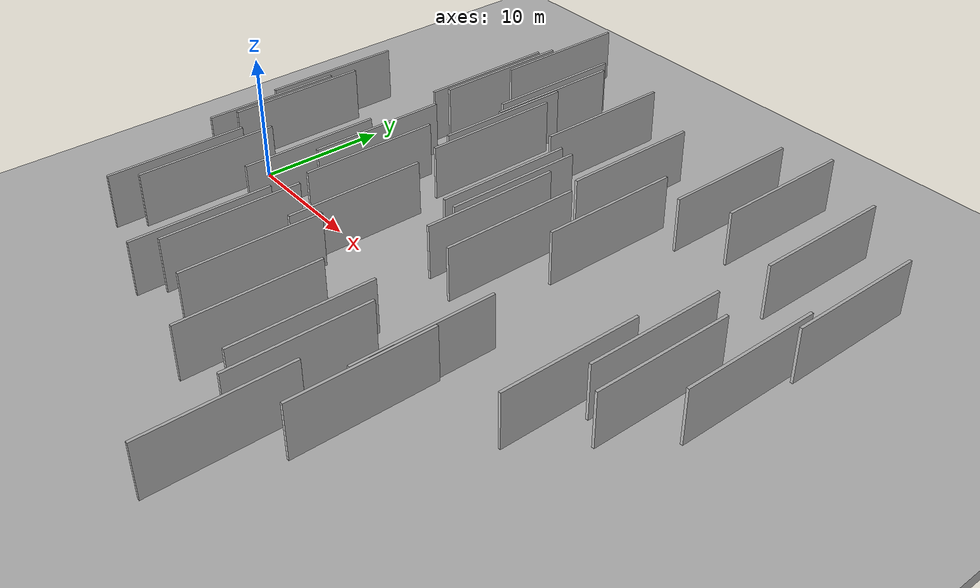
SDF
<?xml version="1.0" encoding="utf-8"?>

<sdf version="1.6">

   <world name="default">

      <gui fullscreen="0">

         <camera name="user_camera">

            <pose>-15 0 4.57585 0 0 0</pose>

            <view_controller>orbit</view_controller>

         </camera>

      </gui>

      <scene>

         <sky>

           <clouds>

             <speed>12</speed>

           </clouds>

         </sky>

         <ambient>0.4 0.4 0.4 1</ambient>

         <background>0.7 0.7 0.7 1</background>

         <shadows>1</shadows>

      </scene>

      <gravity>0 0 -9.8066</gravity>

      <magnetic_field>6e-06 2.3e-05 -4.2e-05</magnetic_field>

      <physics default="0" name="default_physics" type="ode">

         <ode>

            <solver>

               <type>quick</type>

               <iters>10</iters>

               <sor>1.0</sor>

               <use_dynamic_moi_rescaling>0</use_dynamic_moi_rescaling>

            </solver>

            <constraints>

               <cfm>0</cfm>

               <erp>0.2</erp>

               <contact_max_correcting_vel>100</contact_max_correcting_vel>

               <contact_surface_layer>0.001</contact_surface_layer>

            </constraints>

         </ode>

         <max_step_size>0.004</max_step_size>

         <real_time_factor>1</real_time_factor>

         <real_time_update_rate>250</real_time_update_rate>

      </physics>

      <light name="sun" type="directional">

         <cast_shadows>1</cast_shadows>

         <pose>0 0 10 0 0 0</pose>

         <diffuse>0.8 0.8 0.8 1</diffuse>

         <specular>0.2 0.2 0.2 1</specular>

         <attenuation>

            <range>1000</range>

            <constant>0.9</constant>

            <linear>0.01</linear>

            <quadratic>0.001</quadratic>

         </attenuation>

         <direction>-0.5 0.1 -0.9</direction>

      </light>

      <include>

         <name>ground_plane_1</name>

         <uri>model://HANNAS_ground_plane</uri>

         <pose>0 0 0  0 0 0</pose>

      </include>

      <include>

         <name>ground_plane_2</name>

         <uri>model://HANNAS_ground_plane</uri>

         <pose>100 0 0  0 0 0</pose>

      </include>

      <model name="HANNAS_wall_1">

         <static>1</static>

         <pose frame="">34.7637 18.2549 5.0 0.000000 0.000000 1.570796</pose>

         <link name="link">

            <pose frame="">0 0 2.00 0 0 0</pose>

            <collision name="collision">

               <geometry>

                  <box>

                     <size>10.00 0.2 4.00</size>

                  </box>

               </geometry>

               <max_contacts>10</max_contacts>

               <surface>

                  <contact>

                     <ode/>

                  </contact>

                  <bounce/>

                  <friction>

                     <torsional>

                        <ode/>

                     </torsional>

                     <ode/>

                  </friction>

               </surface>

            </collision>

            <visual name="visual">

               <cast_shadows>0</cast_shadows>

               <geometry>

                  <box>

                     <size>10.00 0.2 4.00</size>

                  </box>

               </geometry>

               <material>

                  <script>

                     <uri>model://HANNAS_wall/materials/scripts</uri>

                     <uri>model://HANNAS_wall/materials/textures</uri>

                     <name>vrc/HANNAS_wall</name>

                  </script>

               </material>

            </visual>

            <self_collide>0</self_collide>

            <enable_wind>0</enable_wind>

            <kinematic>0</kinematic>

         </link>

      </model>

      <model name="HANNAS_wall_2">

         <static>1</static>

         <pose frame="">16.1604 10.3642 5.0 0.000000 0.000000 1.570796</pose>

         <link name="link">

            <pose frame="">0 0 2.00 0 0 0</pose>

            <collision name="collision">

               <geometry>

                  <box>

                     <size>10.00 0.2 4.00</size>

                  </box>

               </geometry>

               <max_contacts>10</max_contacts>

               <surface>

                  <contact>

                     <ode/>

                  </contact>

                  <bounce/>

                  <friction>

                     <torsional>

                        <ode/>

                     </torsional>

                     <ode/>

                  </friction>

               </surface>

            </collision>

            <visual name="visual">

               <cast_shadows>0</cast_shadows>

               <geometry>

                  <box>

                     <size>10.00 0.2 4.00</size>

                  </box>

               </geometry>

               <material>

                  <script>

                     <uri>model://HANNAS_wall/materials/scripts</uri>

                     <uri>model://HANNAS_wall/materials/textures</uri>

                     <name>vrc/HANNAS_wall</name>

                  </script>

               </material>

            </visual>

            <self_collide>0</self_collide>

            <enable_wind>0</enable_wind>

            <kinematic>0</kinematic>

         </link>

      </model>

      <model name="HANNAS_wall_3">

         <static>1</static>

         <pose frame="">15.0971 16.0764 5.0 0.000000 0.000000 1.570796</pose>

         <link name="link">

            <pose frame="">0 0 2.00 0 0 0</pose>

            <collision name="collision">

               <geometry>

                  <box>

                     <size>10.00 0.2 4.00</size>

                  </box>

               </geometry>

               <max_contacts>10</max_contacts>

               <surface>

                  <contact>

                     <ode/>

                  </contact>

                  <bounce/>

                  <friction>

                     <torsional>

                        <ode/>

                     </torsional>

                     <ode/>

                  </friction>

               </surface>

            </collision>

            <visual name="visual">

               <cast_shadows>0</cast_shadows>

               <geometry>

                  <box>

                     <size>10.00 0.2 4.00</size>

                  </box>

               </geometry>

               <material>

                  <script>

                     <uri>model://HANNAS_wall/materials/scripts</uri>

                     <uri>model://HANNAS_wall/materials/textures</uri>

                     <name>vrc/HANNAS_wall</name>

                  </script>

               </material>

            </visual>

            <self_collide>0</self_collide>

            <enable_wind>0</enable_wind>

            <kinematic>0</kinematic>

         </link>

      </model>

      <model name="HANNAS_wall_4">

         <static>1</static>

         <pose frame="">31.8353 -8.3380 5.0 0.000000 0.000000 1.570796</pose>

         <link name="link">

            <pose frame="">0 0 2.00 0 0 0</pose>

            <collision name="collision">

               <geometry>

                  <box>

                     <size>10.00 0.2 4.00</size>

                  </box>

               </geometry>

               <max_contacts>10</max_contacts>

               <surface>

                  <contact>

                     <ode/>

                  </contact>

                  <bounce/>

                  <friction>

                     <torsional>

                        <ode/>

                     </torsional>

                     <ode/>

                  </friction>

               </surface>

            </collision>

            <visual name="visual">

               <cast_shadows>0</cast_shadows>

               <geometry>

                  <box>

                     <size>10.00 0.2 4.00</size>

                  </box>

               </geometry>

               <material>

                  <script>

                     <uri>model://HANNAS_wall/materials/scripts</uri>

                     <uri>model://HANNAS_wall/materials/textures</uri>

                     <name>vrc/HANNAS_wall</name>

                  </script>

               </material>

            </visual>

            <self_collide>0</self_collide>

            <enable_wind>0</enable_wind>

            <kinematic>0</kinematic>

         </link>

      </model>

      <model name="HANNAS_wall_5">

         <static>1</static>

         <pose frame="">16.9099 8.6709 5.0 0.000000 0.000000 1.570796</pose>

         <link name="link">

            <pose frame="">0 0 2.00 0 0 0</pose>

            <collision name="collision">

               <geometry>

                  <box>

                     <size>10.00 0.2 4.00</size>

                  </box>

               </geometry>

               <max_contacts>10</max_contacts>

               <surface>

                  <contact>

                     <ode/>

                  </contact>

                  <bounce/>

                  <friction>

                     <torsional>

                        <ode/>

                     </torsional>

                     <ode/>

                  </friction>

               </surface>

            </collision>

            <visual name="visual">

               <cast_shadows>0</cast_shadows>

               <geometry>

                  <box>

                     <size>10.00 0.2 4.00</size>

                  </box>

               </geometry>

               <material>

                  <script>

                     <uri>model://HANNAS_wall/materials/scripts</uri>

                     <uri>model://HANNAS_wall/materials/textures</uri>

                     <name>vrc/HANNAS_wall</name>

                  </script>

               </material>

            </visual>

            <self_collide>0</self_collide>

            <enable_wind>0</enable_wind>

            <kinematic>0</kinematic>

         </link>

      </model>

      <model name="HANNAS_wall_6">

         <static>1</static>

         <pose frame="">10.9218 -2.3869 5.0 0.000000 0.000000 1.570796</pose>

         <link name="link">

            <pose frame="">0 0 2.00 0 0 0</pose>

            <collision name="collision">

               <geometry>

                  <box>

                     <size>10.00 0.2 4.00</size>

                  </box>

               </geometry>

               <max_contacts>10</max_contacts>

               <surface>

                  <contact>

                     <ode/>

                  </contact>

                  <bounce/>

                  <friction>

                     <torsional>

                        <ode/>

                     </torsional>

                     <ode/>

                  </friction>

               </surface>

            </collision>

            <visual name="visual">

               <cast_shadows>0</cast_shadows>

               <geometry>

                  <box>

                     <size>10.00 0.2 4.00</size>

                  </box>

               </geometry>

               <material>

                  <script>

                     <uri>model://HANNAS_wall/materials/scripts</uri>

                     <uri>model://HANNAS_wall/materials/textures</uri>

                     <name>vrc/HANNAS_wall</name>

                  </script>

               </material>

            </visual>

            <self_collide>0</self_collide>

            <enable_wind>0</enable_wind>

            <kinematic>0</kinematic>

         </link>

      </model>

      <model name="HANNAS_wall_7">

         <static>1</static>

         <pose frame="">18.6742 -11.4597 5.0 0.000000 0.000000 1.570796</pose>

         <link name="link">

            <pose frame="">0 0 2.00 0 0 0</pose>

            <collision name="collision">

               <geometry>

                  <box>

                     <size>10.00 0.2 4.00</size>

                  </box>

               </geometry>

               <max_contacts>10</max_contacts>

               <surface>

                  <contact>

                     <ode/>

                  </contact>

                  <bounce/>

                  <friction>

                     <torsional>

                        <ode/>

                     </torsional>

                     <ode/>

                  </friction>

               </surface>

            </collision>

            <visual name="visual">

               <cast_shadows>0</cast_shadows>

               <geometry>

                  <box>

                     <size>10.00 0.2 4.00</size>

                  </box>

               </geometry>

               <material>

                  <script>

                     <uri>model://HANNAS_wall/materials/scripts</uri>

                     <uri>model://HANNAS_wall/materials/textures</uri>

                     <name>vrc/HANNAS_wall</name>

                  </script>

               </material>

            </visual>

            <self_collide>0</self_collide>

            <enable_wind>0</enable_wind>

            <kinematic>0</kinematic>

         </link>

      </model>

      <model name="HANNAS_wall_8">

         <static>1</static>

         <pose frame="">25.9425 13.2909 5.0 0.000000 0.000000 1.570796</pose>

         <link name="link">

            <pose frame="">0 0 2.00 0 0 0</pose>

            <collision name="collision">

               <geometry>

                  <box>

                     <size>10.00 0.2 4.00</size>

                  </box>

               </geometry>

               <max_contacts>10</max_contacts>

               <surface>

                  <contact>

                     <ode/>

                  </contact>

                  <bounce/>

                  <friction>

                     <torsional>

                        <ode/>

                     </torsional>

                     <ode/>

                  </friction>

               </surface>

            </collision>

            <visual name="visual">

               <cast_shadows>0</cast_shadows>

               <geometry>

                  <box>

                     <size>10.00 0.2 4.00</size>

                  </box>

               </geometry>

               <material>

                  <script>

                     <uri>model://HANNAS_wall/materials/scripts</uri>

                     <uri>model://HANNAS_wall/materials/textures</uri>

                     <name>vrc/HANNAS_wall</name>

                  </script>

               </material>

            </visual>

            <self_collide>0</self_collide>

            <enable_wind>0</enable_wind>

            <kinematic>0</kinematic>

         </link>

      </model>

      <model name="HANNAS_wall_9">

         <static>1</static>

         <pose frame="">23.3302 5.2943 5.0 0.000000 0.000000 1.570796</pose>

         <link name="link">

            <pose frame="">0 0 2.00 0 0 0</pose>

            <collision name="collision">

               <geometry>

                  <box>

                     <size>10.00 0.2 4.00</size>

                  </box>

               </geometry>

               <max_contacts>10</max_contacts>

               <surface>

                  <contact>

                     <ode/>

                  </contact>

                  <bounce/>

                  <friction>

                     <torsional>

                        <ode/>

                     </torsional>

                     <ode/>

                  </friction>

               </surface>

            </collision>

            <visual name="visual">

               <cast_shadows>0</cast_shadows>

               <geometry>

                  <box>

                     <size>10.00 0.2 4.00</size>

                  </box>

               </geometry>

               <material>

                  <script>

                     <uri>model://HANNAS_wall/materials/scripts</uri>

                     <uri>model://HANNAS_wall/materials/textures</uri>

                     <name>vrc/HANNAS_wall</name>

                  </script>

               </material>

            </visual>

            <self_collide>0</self_collide>

            <enable_wind>0</enable_wind>

            <kinematic>0</kinematic>

         </link>

      </model>

      <model name="HANNAS_wall_10">

         <static>1</static>

         <pose frame="">11.4710 19.9020 5.0 0.000000 0.000000 1.570796</pose>

         <link name="link">

            <pose frame="">0 0 2.00 0 0 0</pose>

            <collision name="collision">

               <geometry>

                  <box>

                     <size>10.00 0.2 4.00</size>

                  </box>

               </geometry>

               <max_contacts>10</max_contacts>

               <surface>

                  <contact>

                     <ode/>

                  </contact>

                  <bounce/>

                  <friction>

                     <torsional>

                        <ode/>

                     </torsional>

                     <ode/>

                  </friction>

               </surface>

            </collision>

            <visual name="visual">

               <cast_shadows>0</cast_shadows>

               <geometry>

                  <box>

                     <size>10.00 0.2 4.00</size>

                  </box>

               </geometry>

               <material>

                  <script>

                     <uri>model://HANNAS_wall/materials/scripts</uri>

                     <uri>model://HANNAS_wall/materials/textures</uri>

                     <name>vrc/HANNAS_wall</name>

                  </script>

               </material>

            </visual>

            <self_collide>0</self_collide>

            <enable_wind>0</enable_wind>

            <kinematic>0</kinematic>

         </link>

      </model>

      <model name="HANNAS_wall_11">

         <static>1</static>

         <pose frame="">3.1005 4.6125 5.0 0.000000 0.000000 1.570796</pose>

         <link name="link">

            <pose frame="">0 0 2.00 0 0 0</pose>

            <collision name="collision">

               <geometry>

                  <box>

                     <size>10.00 0.2 4.00</size>

                  </box>

               </geometry>

               <max_contacts>10</max_contacts>

               <surface>

                  <contact>

                     <ode/>

                  </contact>

                  <bounce/>

                  <friction>

                     <torsional>

                        <ode/>

                     </torsional>

                     <ode/>

                  </friction>

               </surface>

            </collision>

            <visual name="visual">

               <cast_shadows>0</cast_shadows>

               <geometry>

                  <box>

                     <size>10.00 0.2 4.00</size>

                  </box>

               </geometry>

               <material>

                  <script>

                     <uri>model://HANNAS_wall/materials/scripts</uri>

                     <uri>model://HANNAS_wall/materials/textures</uri>

                     <name>vrc/HANNAS_wall</name>

                  </script>

               </material>

            </visual>

            <self_collide>0</self_collide>

            <enable_wind>0</enable_wind>

            <kinematic>0</kinematic>

         </link>

      </model>

      <model name="HANNAS_wall_12">

         <static>1</static>

         <pose frame="">38.4521 -3.4374 5.0 0.000000 0.000000 1.570796</pose>

         <link name="link">

            <pose frame="">0 0 2.00 0 0 0</pose>

            <collision name="collision">

               <geometry>

                  <box>

                     <size>10.00 0.2 4.00</size>

                  </box>

               </geometry>

               <max_contacts>10</max_contacts>

               <surface>

                  <contact>

                     <ode/>

                  </contact>

                  <bounce/>

                  <friction>

                     <torsional>

                        <ode/>

                     </torsional>

                     <ode/>

                  </friction>

               </surface>

            </collision>

            <visual name="visual">

               <cast_shadows>0</cast_shadows>

               <geometry>

                  <box>

                     <size>10.00 0.2 4.00</size>

                  </box>

               </geometry>

               <material>

                  <script>

                     <uri>model://HANNAS_wall/materials/scripts</uri>

                     <uri>model://HANNAS_wall/materials/textures</uri>

                     <name>vrc/HANNAS_wall</name>

                  </script>

               </material>

            </visual>

            <self_collide>0</self_collide>

            <enable_wind>0</enable_wind>

            <kinematic>0</kinematic>

         </link>

      </model>

      <model name="HANNAS_wall_13">

         <static>1</static>

         <pose frame="">41.5416 0.4805 5.0 0.000000 0.000000 1.570796</pose>

         <link name="link">

            <pose frame="">0 0 2.00 0 0 0</pose>

            <collision name="collision">

               <geometry>

                  <box>

                     <size>10.00 0.2 4.00</size>

                  </box>

               </geometry>

               <max_contacts>10</max_contacts>

               <surface>

                  <contact>

                     <ode/>

                  </contact>

                  <bounce/>

                  <friction>

                     <torsional>

                        <ode/>

                     </torsional>

                     <ode/>

                  </friction>

               </surface>

            </collision>

            <visual name="visual">

               <cast_shadows>0</cast_shadows>

               <geometry>

                  <box>

                     <size>10.00 0.2 4.00</size>

                  </box>

               </geometry>

               <material>

                  <script>

                     <uri>model://HANNAS_wall/materials/scripts</uri>

                     <uri>model://HANNAS_wall/materials/textures</uri>

                     <name>vrc/HANNAS_wall</name>

                  </script>

               </material>

            </visual>

            <self_collide>0</self_collide>

            <enable_wind>0</enable_wind>

            <kinematic>0</kinematic>

         </link>

      </model>

      <model name="HANNAS_wall_14">

         <static>1</static>

         <pose frame="">44.3525 4.3148 5.0 0.000000 0.000000 1.570796</pose>

         <link name="link">

            <pose frame="">0 0 2.00 0 0 0</pose>

            <collision name="collision">

               <geometry>

                  <box>

                     <size>10.00 0.2 4.00</size>

                  </box>

               </geometry>

               <max_contacts>10</max_contacts>

               <surface>

                  <contact>

                     <ode/>

                  </contact>

                  <bounce/>

                  <friction>

                     <torsional>

                        <ode/>

                     </torsional>

                     <ode/>

                  </friction>

               </surface>

            </collision>

            <visual name="visual">

               <cast_shadows>0</cast_shadows>

               <geometry>

                  <box>

                     <size>10.00 0.2 4.00</size>

                  </box>

               </geometry>

               <material>

                  <script>

                     <uri>model://HANNAS_wall/materials/scripts</uri>

                     <uri>model://HANNAS_wall/materials/textures</uri>

                     <name>vrc/HANNAS_wall</name>

                  </script>

               </material>

            </visual>

            <self_collide>0</self_collide>

            <enable_wind>0</enable_wind>

            <kinematic>0</kinematic>

         </link>

      </model>

      <model name="HANNAS_wall_15">

         <static>1</static>

         <pose frame="">31.6420 16.8582 5.0 0.000000 0.000000 1.570796</pose>

         <link name="link">

            <pose frame="">0 0 2.00 0 0 0</pose>

            <collision name="collision">

               <geometry>

                  <box>

                     <size>10.00 0.2 4.00</size>

                  </box>

               </geometry>

               <max_contacts>10</max_contacts>

               <surface>

                  <contact>

                     <ode/>

                  </contact>

                  <bounce/>

                  <friction>

                     <torsional>

                        <ode/>

                     </torsional>

                     <ode/>

                  </friction>

               </surface>

            </collision>

            <visual name="visual">

               <cast_shadows>0</cast_shadows>

               <geometry>

                  <box>

                     <size>10.00 0.2 4.00</size>

                  </box>

               </geometry>

               <material>

                  <script>

                     <uri>model://HANNAS_wall/materials/scripts</uri>

                     <uri>model://HANNAS_wall/materials/textures</uri>

                     <name>vrc/HANNAS_wall</name>

                  </script>

               </material>

            </visual>

            <self_collide>0</self_collide>

            <enable_wind>0</enable_wind>

            <kinematic>0</kinematic>

         </link>

      </model>

      <model name="HANNAS_wall_16">

         <static>1</static>

         <pose frame="">22.2936 5.3319 5.0 0.000000 0.000000 1.570796</pose>

         <link name="link">

            <pose frame="">0 0 2.00 0 0 0</pose>

            <collision name="collision">

               <geometry>

                  <box>

                     <size>10.00 0.2 4.00</size>

                  </box>

               </geometry>

               <max_contacts>10</max_contacts>

               <surface>

                  <contact>

                     <ode/>

                  </contact>

                  <bounce/>

                  <friction>

                     <torsional>

                        <ode/>

                     </torsional>

                     <ode/>

                  </friction>

               </surface>

            </collision>

            <visual name="visual">

               <cast_shadows>0</cast_shadows>

               <geometry>

                  <box>

                     <size>10.00 0.2 4.00</size>

                  </box>

               </geometry>

               <material>

                  <script>

                     <uri>model://HANNAS_wall/materials/scripts</uri>

                     <uri>model://HANNAS_wall/materials/textures</uri>

                     <name>vrc/HANNAS_wall</name>

                  </script>

               </material>

            </visual>

            <self_collide>0</self_collide>

            <enable_wind>0</enable_wind>

            <kinematic>0</kinematic>

         </link>

      </model>

      <model name="HANNAS_wall_17">

         <static>1</static>

         <pose frame="">12.0951 2.4137 5.0 0.000000 0.000000 1.570796</pose>

         <link name="link">

            <pose frame="">0 0 2.00 0 0 0</pose>

            <collision name="collision">

               <geometry>

                  <box>

                     <size>10.00 0.2 4.00</size>

                  </box>

               </geometry>

               <max_contacts>10</max_contacts>

               <surface>

                  <contact>

                     <ode/>

                  </contact>

                  <bounce/>

                  <friction>

                     <torsional>

                        <ode/>

                     </torsional>

                     <ode/>

                  </friction>

               </surface>

            </collision>

            <visual name="visual">

               <cast_shadows>0</cast_shadows>

               <geometry>

                  <box>

                     <size>10.00 0.2 4.00</size>

                  </box>

               </geometry>

               <material>

                  <script>

                     <uri>model://HANNAS_wall/materials/scripts</uri>

                     <uri>model://HANNAS_wall/materials/textures</uri>

                     <name>vrc/HANNAS_wall</name>

                  </script>

               </material>

            </visual>

            <self_collide>0</self_collide>

            <enable_wind>0</enable_wind>

            <kinematic>0</kinematic>

         </link>

      </model>

      <model name="HANNAS_wall_18">

         <static>1</static>

         <pose frame="">7.4552 -8.3068 5.0 0.000000 0.000000 1.570796</pose>

         <link name="link">

            <pose frame="">0 0 2.00 0 0 0</pose>

            <collision name="collision">

               <geometry>

                  <box>

                     <size>10.00 0.2 4.00</size>

                  </box>

               </geometry>

               <max_contacts>10</max_contacts>

               <surface>

                  <contact>

                     <ode/>

                  </contact>

                  <bounce/>

                  <friction>

                     <torsional>

                        <ode/>

                     </torsional>

                     <ode/>

                  </friction>

               </surface>

            </collision>

            <visual name="visual">

               <cast_shadows>0</cast_shadows>

               <geometry>

                  <box>

                     <size>10.00 0.2 4.00</size>

                  </box>

               </geometry>

               <material>

                  <script>

                     <uri>model://HANNAS_wall/materials/scripts</uri>

                     <uri>model://HANNAS_wall/materials/textures</uri>

                     <name>vrc/HANNAS_wall</name>

                  </script>

               </material>

            </visual>

            <self_collide>0</self_collide>

            <enable_wind>0</enable_wind>

            <kinematic>0</kinematic>

         </link>

      </model>

      <model name="HANNAS_wall_19">

         <static>1</static>

         <pose frame="">26.3927 -12.7651 5.0 0.000000 0.000000 1.570796</pose>

         <link name="link">

            <pose frame="">0 0 2.00 0 0 0</pose>

            <collision name="collision">

               <geometry>

                  <box>

                     <size>10.00 0.2 4.00</size>

                  </box>

               </geometry>

               <max_contacts>10</max_contacts>

               <surface>

                  <contact>

                     <ode/>

                  </contact>

                  <bounce/>

                  <friction>

                     <torsional>

                        <ode/>

                     </torsional>

                     <ode/>

                  </friction>

               </surface>

            </collision>

            <visual name="visual">

               <cast_shadows>0</cast_shadows>

               <geometry>

                  <box>

                     <size>10.00 0.2 4.00</size>

                  </box>

               </geometry>

               <material>

                  <script>

                     <uri>model://HANNAS_wall/materials/scripts</uri>

                     <uri>model://HANNAS_wall/materials/textures</uri>

                     <name>vrc/HANNAS_wall</name>

                  </script>

               </material>

            </visual>

            <self_collide>0</self_collide>

            <enable_wind>0</enable_wind>

            <kinematic>0</kinematic>

         </link>

      </model>

      <model name="HANNAS_wall_20">

         <static>1</static>

         <pose frame="">14.8712 -10.6961 5.0 0.000000 0.000000 1.570796</pose>

         <link name="link">

            <pose frame="">0 0 2.00 0 0 0</pose>

            <collision name="collision">

               <geometry>

                  <box>

                     <size>10.00 0.2 4.00</size>

                  </box>

               </geometry>

               <max_contacts>10</max_contacts>

               <surface>

                  <contact>

                     <ode/>

                  </contact>

                  <bounce/>

                  <friction>

                     <torsional>

                        <ode/>

                     </torsional>

                     <ode/>

                  </friction>

               </surface>

            </collision>

            <visual name="visual">

               <cast_shadows>0</cast_shadows>

               <geometry>

                  <box>

                     <size>10.00 0.2 4.00</size>

                  </box>

               </geometry>

               <material>

                  <script>

                     <uri>model://HANNAS_wall/materials/scripts</uri>

                     <uri>model://HANNAS_wall/materials/textures</uri>

                     <name>vrc/HANNAS_wall</name>

                  </script>

               </material>

            </visual>

            <self_collide>0</self_collide>

            <enable_wind>0</enable_wind>

            <kinematic>0</kinematic>

         </link>

      </model>

      <model name="HANNAS_wall_21">

         <static>1</static>

         <pose frame="">26.5992 2.2820 5.0 0.000000 0.000000 1.570796</pose>

         <link name="link">

            <pose frame="">0 0 2.00 0 0 0</pose>

            <collision name="collision">

               <geometry>

                  <box>

                     <size>10.00 0.2 4.00</size>

                  </box>

               </geometry>

               <max_contacts>10</max_contacts>

               <surface>

                  <contact>

                     <ode/>

                  </contact>

                  <bounce/>

                  <friction>

                     <torsional>

                        <ode/>

                     </torsional>

                     <ode/>

                  </friction>

               </surface>

            </collision>

            <visual name="visual">

               <cast_shadows>0</cast_shadows>

               <geometry>

                  <box>

                     <size>10.00 0.2 4.00</size>

                  </box>

               </geometry>

               <material>

                  <script>

                     <uri>model://HANNAS_wall/materials/scripts</uri>

                     <uri>model://HANNAS_wall/materials/textures</uri>

                     <name>vrc/HANNAS_wall</name>

                  </script>

               </material>

            </visual>

            <self_collide>0</self_collide>

            <enable_wind>0</enable_wind>

            <kinematic>0</kinematic>

         </link>

      </model>

      <model name="HANNAS_wall_22">

         <static>1</static>

         <pose frame="">29.6820 -19.9737 5.0 0.000000 0.000000 1.570796</pose>

         <link name="link">

            <pose frame="">0 0 2.00 0 0 0</pose>

            <collision name="collision">

               <geometry>

                  <box>

                     <size>10.00 0.2 4.00</size>

                  </box>

               </geometry>

               <max_contacts>10</max_contacts>

               <surface>

                  <contact>

                     <ode/>

                  </contact>

                  <bounce/>

                  <friction>

                     <torsional>

                        <ode/>

                     </torsional>

                     <ode/>

                  </friction>

               </surface>

            </collision>

            <visual name="visual">

               <cast_shadows>0</cast_shadows>

               <geometry>

                  <box>

                     <size>10.00 0.2 4.00</size>

                  </box>

               </geometry>

               <material>

                  <script>

                     <uri>model://HANNAS_wall/materials/scripts</uri>

                     <uri>model://HANNAS_wall/materials/textures</uri>

                     <name>vrc/HANNAS_wall</name>

                  </script>

               </material>

            </visual>

            <self_collide>0</self_collide>

            <enable_wind>0</enable_wind>

            <kinematic>0</kinematic>

         </link>

      </model>

      <model name="HANNAS_wall_23">

         <static>1</static>

         <pose frame="">3.7807 -1.0037 5.0 0.000000 0.000000 1.570796</pose>

         <link name="link">

            <pose frame="">0 0 2.00 0 0 0</pose>

            <collision name="collision">

               <geometry>

                  <box>

                     <size>10.00 0.2 4.00</size>

                  </box>

               </geometry>

               <max_contacts>10</max_contacts>

               <surface>

                  <contact>

                     <ode/>

                  </contact>

                  <bounce/>

                  <friction>

                     <torsional>

                        <ode/>

                     </torsional>

                     <ode/>

                  </friction>

               </surface>

            </collision>

            <visual name="visual">

               <cast_shadows>0</cast_shadows>

               <geometry>

                  <box>

                     <size>10.00 0.2 4.00</size>

                  </box>

               </geometry>

               <material>

                  <script>

                     <uri>model://HANNAS_wall/materials/scripts</uri>

                     <uri>model://HANNAS_wall/materials/textures</uri>

                     <name>vrc/HANNAS_wall</name>

                  </script>

               </material>

            </visual>

            <self_collide>0</self_collide>

            <enable_wind>0</enable_wind>

            <kinematic>0</kinematic>

         </link>

      </model>

      <model name="HANNAS_wall_24">

         <static>1</static>

         <pose frame="">6.2934 -9.9723 5.0 0.000000 0.000000 1.570796</pose>

         <link name="link">

            <pose frame="">0 0 2.00 0 0 0</pose>

            <collision name="collision">

               <geometry>

                  <box>

                     <size>10.00 0.2 4.00</size>

                  </box>

               </geometry>

               <max_contacts>10</max_contacts>

               <surface>

                  <contact>

                     <ode/>

                  </contact>

                  <bounce/>

                  <friction>

                     <torsional>

                        <ode/>

                     </torsional>

                     <ode/>

                  </friction>

               </surface>

            </collision>

            <visual name="visual">

               <cast_shadows>0</cast_shadows>

               <geometry>

                  <box>

                     <size>10.00 0.2 4.00</size>

                  </box>

               </geometry>

               <material>

                  <script>

                     <uri>model://HANNAS_wall/materials/scripts</uri>

                     <uri>model://HANNAS_wall/materials/textures</uri>

                     <name>vrc/HANNAS_wall</name>

                  </script>

               </material>

            </visual>

            <self_collide>0</self_collide>

            <enable_wind>0</enable_wind>

            <kinematic>0</kinematic>

         </link>

      </model>

      <model name="HANNAS_wall_25">

         <static>1</static>

         <pose frame="">27.9908 -13.9595 5.0 0.000000 0.000000 1.570796</pose>

         <link name="link">

            <pose frame="">0 0 2.00 0 0 0</pose>

            <collision name="collision">

               <geometry>

                  <box>

                     <size>10.00 0.2 4.00</size>

                  </box>

               </geometry>

               <max_contacts>10</max_contacts>

               <surface>

                  <contact>

                     <ode/>

                  </contact>

                  <bounce/>

                  <friction>

                     <torsional>

                        <ode/>

                     </torsional>

                     <ode/>

                  </friction>

               </surface>

            </collision>

            <visual name="visual">

               <cast_shadows>0</cast_shadows>

               <geometry>

                  <box>

                     <size>10.00 0.2 4.00</size>

                  </box>

               </geometry>

               <material>

                  <script>

                     <uri>model://HANNAS_wall/materials/scripts</uri>

                     <uri>model://HANNAS_wall/materials/textures</uri>

                     <name>vrc/HANNAS_wall</name>

                  </script>

               </material>

            </visual>

            <self_collide>0</self_collide>

            <enable_wind>0</enable_wind>

            <kinematic>0</kinematic>

         </link>

      </model>

      <model name="HANNAS_wall_26">

         <static>1</static>

         <pose frame="">20.6391 15.7214 5.0 0.000000 0.000000 1.570796</pose>

         <link name="link">

            <pose frame="">0 0 2.00 0 0 0</pose>

            <collision name="collision">

               <geometry>

                  <box>

                     <size>10.00 0.2 4.00</size>

                  </box>

               </geometry>

               <max_contacts>10</max_contacts>

               <surface>

                  <contact>

                     <ode/>

                  </contact>

                  <bounce/>

                  <friction>

                     <torsional>

                        <ode/>

                     </torsional>

                     <ode/>

                  </friction>

               </surface>

            </collision>

            <visual name="visual">

               <cast_shadows>0</cast_shadows>

               <geometry>

                  <box>

                     <size>10.00 0.2 4.00</size>

                  </box>

               </geometry>

               <material>

                  <script>

                     <uri>model://HANNAS_wall/materials/scripts</uri>

                     <uri>model://HANNAS_wall/materials/textures</uri>

                     <name>vrc/HANNAS_wall</name>

                  </script>

               </material>

            </visual>

            <self_collide>0</self_collide>

            <enable_wind>0</enable_wind>

            <kinematic>0</kinematic>

         </link>

      </model>

      <model name="HANNAS_wall_27">

         <static>1</static>

         <pose frame="">39.7407 1.7102 5.0 0.000000 0.000000 1.570796</pose>

         <link name="link">

            <pose frame="">0 0 2.00 0 0 0</pose>

            <collision name="collision">

               <geometry>

                  <box>

                     <size>10.00 0.2 4.00</size>

                  </box>

               </geometry>

               <max_contacts>10</max_contacts>

               <surface>

                  <contact>

                     <ode/>

                  </contact>

                  <bounce/>

                  <friction>

                     <torsional>

                        <ode/>

                     </torsional>

                     <ode/>

                  </friction>

               </surface>

            </collision>

            <visual name="visual">

               <cast_shadows>0</cast_shadows>

               <geometry>

                  <box>

                     <size>10.00 0.2 4.00</size>

                  </box>

               </geometry>

               <material>

                  <script>

                     <uri>model://HANNAS_wall/materials/scripts</uri>

                     <uri>model://HANNAS_wall/materials/textures</uri>

                     <name>vrc/HANNAS_wall</name>

                  </script>

               </material>

            </visual>

            <self_collide>0</self_collide>

            <enable_wind>0</enable_wind>

            <kinematic>0</kinematic>

         </link>

      </model>

      <model name="HANNAS_wall_28">

         <static>1</static>

         <pose frame="">22.7997 -14.0242 5.0 0.000000 0.000000 1.570796</pose>

         <link name="link">

            <pose frame="">0 0 2.00 0 0 0</pose>

            <collision name="collision">

               <geometry>

                  <box>

                     <size>10.00 0.2 4.00</size>

                  </box>

               </geometry>

               <max_contacts>10</max_contacts>

               <surface>

                  <contact>

                     <ode/>

                  </contact>

                  <bounce/>

                  <friction>

                     <torsional>

                        <ode/>

                     </torsional>

                     <ode/>

                  </friction>

               </surface>

            </collision>

            <visual name="visual">

               <cast_shadows>0</cast_shadows>

               <geometry>

                  <box>

                     <size>10.00 0.2 4.00</size>

                  </box>

               </geometry>

               <material>

                  <script>

                     <uri>model://HANNAS_wall/materials/scripts</uri>

                     <uri>model://HANNAS_wall/materials/textures</uri>

                     <name>vrc/HANNAS_wall</name>

                  </script>

               </material>

            </visual>

            <self_collide>0</self_collide>

            <enable_wind>0</enable_wind>

            <kinematic>0</kinematic>

         </link>

      </model>

      <model name="HANNAS_wall_29">

         <static>1</static>

         <pose frame="">24.0229 2.7648 5.0 0.000000 0.000000 1.570796</pose>

         <link name="link">

            <pose frame="">0 0 2.00 0 0 0</pose>

            <collision name="collision">

               <geometry>

                  <box>

                     <size>10.00 0.2 4.00</size>

                  </box>

               </geometry>

               <max_contacts>10</max_contacts>

               <surface>

                  <contact>

                     <ode/>

                  </contact>

                  <bounce/>

                  <friction>

                     <torsional>

                        <ode/>

                     </torsional>

                     <ode/>

                  </friction>

               </surface>

            </collision>

            <visual name="visual">

               <cast_shadows>0</cast_shadows>

               <geometry>

                  <box>

                     <size>10.00 0.2 4.00</size>

                  </box>

               </geometry>

               <material>

                  <script>

                     <uri>model://HANNAS_wall/materials/scripts</uri>

                     <uri>model://HANNAS_wall/materials/textures</uri>

                     <name>vrc/HANNAS_wall</name>

                  </script>

               </material>

            </visual>

            <self_collide>0</self_collide>

            <enable_wind>0</enable_wind>

            <kinematic>0</kinematic>

         </link>

      </model>

      <model name="HANNAS_wall_30">

         <static>1</static>

         <pose frame="">17.6828 -3.2831 5.0 0.000000 0.000000 1.570796</pose>

         <link name="link">

            <pose frame="">0 0 2.00 0 0 0</pose>

            <collision name="collision">

               <geometry>

                  <box>

                     <size>10.00 0.2 4.00</size>

                  </box>

               </geometry>

               <max_contacts>10</max_contacts>

               <surface>

                  <contact>

                     <ode/>

                  </contact>

                  <bounce/>

                  <friction>

                     <torsional>

                        <ode/>

                     </torsional>

                     <ode/>

                  </friction>

               </surface>

            </collision>

            <visual name="visual">

               <cast_shadows>0</cast_shadows>

               <geometry>

                  <box>

                     <size>10.00 0.2 4.00</size>

                  </box>

               </geometry>

               <material>

                  <script>

                     <uri>model://HANNAS_wall/materials/scripts</uri>

                     <uri>model://HANNAS_wall/materials/textures</uri>

                     <name>vrc/HANNAS_wall</name>

                  </script>

               </material>

            </visual>

            <self_collide>0</self_collide>

            <enable_wind>0</enable_wind>

            <kinematic>0</kinematic>

         </link>

      </model>

      <model name="HANNAS_wall_31">

         <static>1</static>

         <pose frame="">10.6012 13.3911 5.0 0.000000 0.000000 1.570796</pose>

         <link name="link">

            <pose frame="">0 0 2.00 0 0 0</pose>

            <collision name="collision">

               <geometry>

                  <box>

                     <size>10.00 0.2 4.00</size>

                  </box>

               </geometry>

               <max_contacts>10</max_contacts>

               <surface>

                  <contact>

                     <ode/>

                  </contact>

                  <bounce/>

                  <friction>

                     <torsional>

                        <ode/>

                     </torsional>

                     <ode/>

                  </friction>

               </surface>

            </collision>

            <visual name="visual">

               <cast_shadows>0</cast_shadows>

               <geometry>

                  <box>

                     <size>10.00 0.2 4.00</size>

                  </box>

               </geometry>

               <material>

                  <script>

                     <uri>model://HANNAS_wall/materials/scripts</uri>

                     <uri>model://HANNAS_wall/materials/textures</uri>

                     <name>vrc/HANNAS_wall</name>

                  </script>

               </material>

            </visual>

            <self_collide>0</self_collide>

            <enable_wind>0</enable_wind>

            <kinematic>0</kinematic>

         </link>

      </model>

      <model name="HANNAS_wall_32">

         <static>1</static>

         <pose frame="">32.0592 -12.5823 5.0 0.000000 0.000000 1.570796</pose>

         <link name="link">

            <pose frame="">0 0 2.00 0 0 0</pose>

            <collision name="collision">

               <geometry>

                  <box>

                     <size>10.00 0.2 4.00</size>

                  </box>

               </geometry>

               <max_contacts>10</max_contacts>

               <surface>

                  <contact>

                     <ode/>

                  </contact>

                  <bounce/>

                  <friction>

                     <torsional>

                        <ode/>

                     </torsional>

                     <ode/>

                  </friction>

               </surface>

            </collision>

            <visual name="visual">

               <cast_shadows>0</cast_shadows>

               <geometry>

                  <box>

                     <size>10.00 0.2 4.00</size>

                  </box>

               </geometry>

               <material>

                  <script>

                     <uri>model://HANNAS_wall/materials/scripts</uri>

                     <uri>model://HANNAS_wall/materials/textures</uri>

                     <name>vrc/HANNAS_wall</name>

                  </script>

               </material>

            </visual>

            <self_collide>0</self_collide>

            <enable_wind>0</enable_wind>

            <kinematic>0</kinematic>

         </link>

      </model>

      <model name="HANNAS_wall_33">

         <static>1</static>

         <pose frame="">29.2787 8.2061 5.0 0.000000 0.000000 1.570796</pose>

         <link name="link">

            <pose frame="">0 0 2.00 0 0 0</pose>

            <collision name="collision">

               <geometry>

                  <box>

                     <size>10.00 0.2 4.00</size>

                  </box>

               </geometry>

               <max_contacts>10</max_contacts>

               <surface>

                  <contact>

                     <ode/>

                  </contact>

                  <bounce/>

                  <friction>

                     <torsional>

                        <ode/>

                     </torsional>

                     <ode/>

                  </friction>

               </surface>

            </collision>

            <visual name="visual">

               <cast_shadows>0</cast_shadows>

               <geometry>

                  <box>

                     <size>10.00 0.2 4.00</size>

                  </box>

               </geometry>

               <material>

                  <script>

                     <uri>model://HANNAS_wall/materials/scripts</uri>

                     <uri>model://HANNAS_wall/materials/textures</uri>

                     <name>vrc/HANNAS_wall</name>

                  </script>

               </material>

            </visual>

            <self_collide>0</self_collide>

            <enable_wind>0</enable_wind>

            <kinematic>0</kinematic>

         </link>

      </model>

      <model name="HANNAS_wall_34">

         <static>1</static>

         <pose frame="">4.2177 0.8348 5.0 0.000000 0.000000 1.570796</pose>

         <link name="link">

            <pose frame="">0 0 2.00 0 0 0</pose>

            <collision name="collision">

               <geometry>

                  <box>

                     <size>10.00 0.2 4.00</size>

                  </box>

               </geometry>

               <max_contacts>10</max_contacts>

               <surface>

                  <contact>

                     <ode/>

                  </contact>

                  <bounce/>

                  <friction>

                     <torsional>

                        <ode/>

                     </torsional>

                     <ode/>

                  </friction>

               </surface>

            </collision>

            <visual name="visual">

               <cast_shadows>0</cast_shadows>

               <geometry>

                  <box>

                     <size>10.00 0.2 4.00</size>

                  </box>

               </geometry>

               <material>

                  <script>

                     <uri>model://HANNAS_wall/materials/scripts</uri>

                     <uri>model://HANNAS_wall/materials/textures</uri>

                     <name>vrc/HANNAS_wall</name>

                  </script>

               </material>

            </visual>

            <self_collide>0</self_collide>

            <enable_wind>0</enable_wind>

            <kinematic>0</kinematic>

         </link>

      </model>

      <model name="HANNAS_wall_35">

         <static>1</static>

         <pose frame="">14.1422 0.3286 5.0 0.000000 0.000000 1.570796</pose>

         <link name="link">

            <pose frame="">0 0 2.00 0 0 0</pose>

            <collision name="collision">

               <geometry>

                  <box>

                     <size>10.00 0.2 4.00</size>

                  </box>

               </geometry>

               <max_contacts>10</max_contacts>

               <surface>

                  <contact>

                     <ode/>

                  </contact>

                  <bounce/>

                  <friction>

                     <torsional>

                        <ode/>

                     </torsional>

                     <ode/>

                  </friction>

               </surface>

            </collision>

            <visual name="visual">

               <cast_shadows>0</cast_shadows>

               <geometry>

                  <box>

                     <size>10.00 0.2 4.00</size>

                  </box>

               </geometry>

               <material>

                  <script>

                     <uri>model://HANNAS_wall/materials/scripts</uri>

                     <uri>model://HANNAS_wall/materials/textures</uri>

                     <name>vrc/HANNAS_wall</name>

                  </script>

               </material>

            </visual>

            <self_collide>0</self_collide>

            <enable_wind>0</enable_wind>

            <kinematic>0</kinematic>

         </link>

      </model>

      <model name="HANNAS_wall_36">

         <static>1</static>

         <pose frame="">44.8494 12.7293 5.0 0.000000 0.000000 1.570796</pose>

         <link name="link">

            <pose frame="">0 0 2.00 0 0 0</pose>

            <collision name="collision">

               <geometry>

                  <box>

                     <size>10.00 0.2 4.00</size>

                  </box>

               </geometry>

               <max_contacts>10</max_contacts>

               <surface>

                  <contact>

                     <ode/>

                  </contact>

                  <bounce/>

                  <friction>

                     <torsional>

                        <ode/>

                     </torsional>

                     <ode/>

                  </friction>

               </surface>

            </collision>

            <visual name="visual">

               <cast_shadows>0</cast_shadows>

               <geometry>

                  <box>

                     <size>10.00 0.2 4.00</size>

                  </box>

               </geometry>

               <material>

                  <script>

                     <uri>model://HANNAS_wall/materials/scripts</uri>

                     <uri>model://HANNAS_wall/materials/textures</uri>

                     <name>vrc/HANNAS_wall</name>

                  </script>

               </material>

            </visual>

            <self_collide>0</self_collide>

            <enable_wind>0</enable_wind>

            <kinematic>0</kinematic>

         </link>

      </model>

      <model name="HANNAS_wall_37">

         <static>1</static>

         <pose frame="">39.9267 15.8647 5.0 0.000000 0.000000 1.570796</pose>

         <link name="link">

            <pose frame="">0 0 2.00 0 0 0</pose>

            <collision name="collision">

               <geometry>

                  <box>

                     <size>10.00 0.2 4.00</size>

                  </box>

               </geometry>

               <max_contacts>10</max_contacts>

               <surface>

                  <contact>

                     <ode/>

                  </contact>

                  <bounce/>

                  <friction>

                     <torsional>

                        <ode/>

                     </torsional>

                     <ode/>

                  </friction>

               </surface>

            </collision>

            <visual name="visual">

               <cast_shadows>0</cast_shadows>

               <geometry>

                  <box>

                     <size>10.00 0.2 4.00</size>

                  </box>

               </geometry>

               <material>

                  <script>

                     <uri>model://HANNAS_wall/materials/scripts</uri>

                     <uri>model://HANNAS_wall/materials/textures</uri>

                     <name>vrc/HANNAS_wall</name>

                  </script>

               </material>

            </visual>

            <self_collide>0</self_collide>

            <enable_wind>0</enable_wind>

            <kinematic>0</kinematic>

         </link>

      </model>

      <model name="HANNAS_wall_38">

         <static>1</static>

         <pose frame="">15.8787 15.2010 5.0 0.000000 0.000000 1.570796</pose>

         <link name="link">

            <pose frame="">0 0 2.00 0 0 0</pose>

            <collision name="collision">

               <geometry>

                  <box>

                     <size>10.00 0.2 4.00</size>

                  </box>

               </geometry>

               <max_contacts>10</max_contacts>

               <surface>

                  <contact>

                     <ode/>

                  </contact>

                  <bounce/>

                  <friction>

                     <torsional>

                        <ode/>

                     </torsional>

                     <ode/>

                  </friction>

               </surface>

            </collision>

            <visual name="visual">

               <cast_shadows>0</cast_shadows>

               <geometry>

                  <box>

                     <size>10.00 0.2 4.00</size>

                  </box>

               </geometry>

               <material>

                  <script>

                     <uri>model://HANNAS_wall/materials/scripts</uri>

                     <uri>model://HANNAS_wall/materials/textures</uri>

                     <name>vrc/HANNAS_wall</name>

                  </script>

               </material>

            </visual>

            <self_collide>0</self_collide>

            <enable_wind>0</enable_wind>

            <kinematic>0</kinematic>

         </link>

      </model>

      <model name="HANNAS_wall_39">

         <static>1</static>

         <pose frame="">13.9742 -12.3141 5.0 0.000000 0.000000 1.570796</pose>

         <link name="link">

            <pose frame="">0 0 2.00 0 0 0</pose>

            <collision name="collision">

               <geometry>

                  <box>

                     <size>10.00 0.2 4.00</size>

                  </box>

               </geometry>

               <max_contacts>10</max_contacts>

               <surface>

                  <contact>

                     <ode/>

                  </contact>

                  <bounce/>

                  <friction>

                     <torsional>

                        <ode/>

                     </torsional>

                     <ode/>

                  </friction>

               </surface>

            </collision>

            <visual name="visual">

               <cast_shadows>0</cast_shadows>

               <geometry>

                  <box>

                     <size>10.00 0.2 4.00</size>

                  </box>

               </geometry>

               <material>

                  <script>

                     <uri>model://HANNAS_wall/materials/scripts</uri>

                     <uri>model://HANNAS_wall/materials/textures</uri>

                     <name>vrc/HANNAS_wall</name>

                  </script>

               </material>

            </visual>

            <self_collide>0</self_collide>

            <enable_wind>0</enable_wind>

            <kinematic>0</kinematic>

         </link>

      </model>

      <model name="HANNAS_wall_40">

         <static>1</static>

         <pose frame="">11.0246 14.4443 5.0 0.000000 0.000000 1.570796</pose>

         <link name="link">

            <pose frame="">0 0 2.00 0 0 0</pose>

            <collision name="collision">

               <geometry>

                  <box>

                     <size>10.00 0.2 4.00</size>

                  </box>

               </geometry>

               <max_contacts>10</max_contacts>

               <surface>

                  <contact>

                     <ode/>

                  </contact>

                  <bounce/>

                  <friction>

                     <torsional>

                        <ode/>

                     </torsional>

                     <ode/>

                  </friction>

               </surface>

            </collision>

            <visual name="visual">

               <cast_shadows>0</cast_shadows>

               <geometry>

                  <box>

                     <size>10.00 0.2 4.00</size>

                  </box>

               </geometry>

               <material>

                  <script>

                     <uri>model://HANNAS_wall/materials/scripts</uri>

                     <uri>model://HANNAS_wall/materials/textures</uri>

                     <name>vrc/HANNAS_wall</name>

                  </script>

               </material>

            </visual>

            <self_collide>0</self_collide>

            <enable_wind>0</enable_wind>

            <kinematic>0</kinematic>

         </link>

      </model>

   </world>

</sdf>
